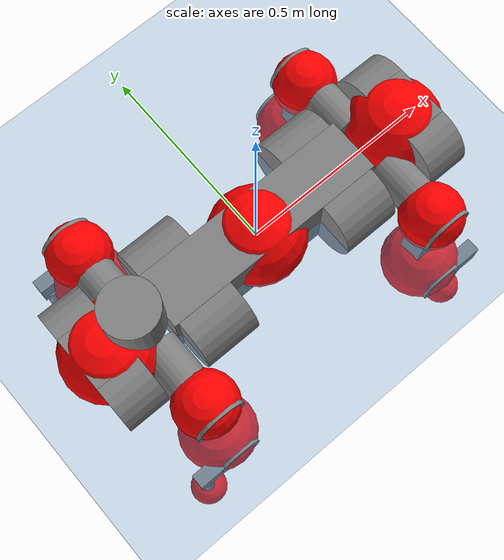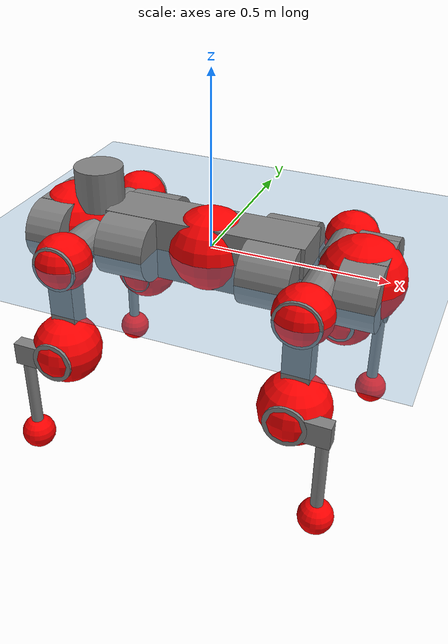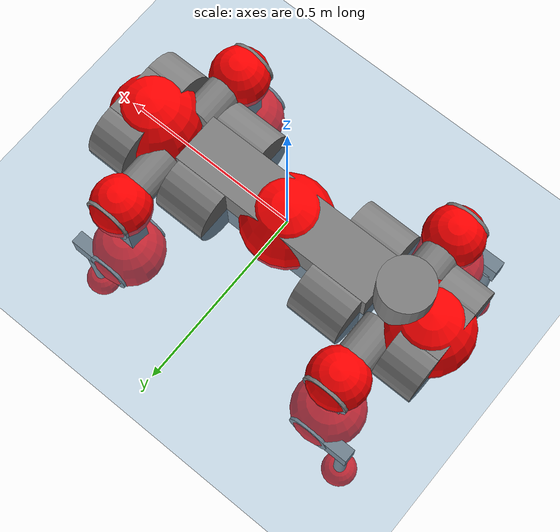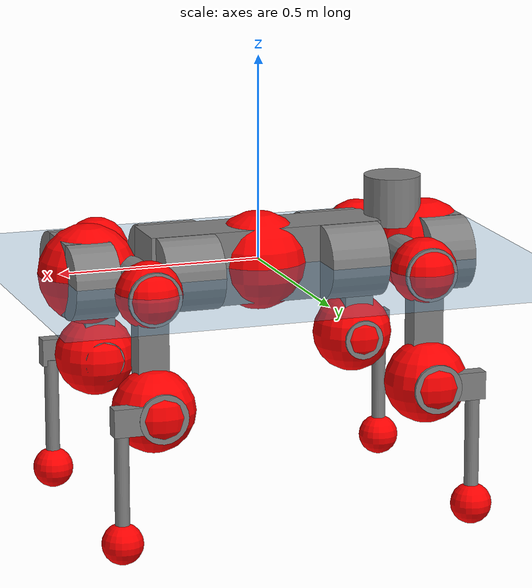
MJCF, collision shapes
<mujoco model="anymal_c">
  <compiler angle="radian" assetdir="assets" balanceinertia="true" inertiafromgeom="false"/>

  <option timestep="0.005" density="1.2" viscosity="2e-05"/>

  <size nkey="1"/>

  <visual>
    <quality shadowsize="8192"/>
    <map shadowclip="0.5"/>
  </visual>

  <default>
    <default class="/">
      <material specular="0" shininess="0.25"/>
      <geom contype="0" conaffinity="0" group="1" solref="-1000 -80"/>
      <site size="0.01 0.005 0.005" group="5"/>
      <general forcelimited="true" forcerange="-80 80" biastype="affine" gainprm="80" biasprm="0 -80 -2"/>
      <default class="anymal_c">
        <joint armature="0.01" damping="0.01" frictionloss="0.1"/>
        <default class="visual">
          <geom type="mesh" group="2"/>
          <default class="visual_zflip"/>
        </default>
        <default class="collision">
          <geom type="cylinder" group="3"/>
          <default class="foot">
            <geom size="0.03 0 0" type="sphere" condim="6" priority="1" friction="0.8 0.02 0.01" solimp="0.015 1 0.03"/>
          </default>
        </default>
      </default>
      <default class="reward_collision_sphere">
        <geom group="5" rgba="1 0 0 1"/>
      </default>
    </default>
  </default>

  <asset>
    <texture type="skybox" colorspace="auto" name="//unnamed_texture_0" builtin="gradient" rgb1="0.95 0.95 0.95" rgb2="0.95 0.95 0.95" width="100" height="600"/>
    <texture type="2d" colorspace="auto" name="texplane" builtin="checker" rgb1="0.345 0.575 0.748" rgb2="0.345 0.575 0.748" markrgb="1 1 1" width="512" height="512"/>
    <texture type="2d" colorspace="linear" name="base" file="base.png"/>
    <texture type="2d" colorspace="linear" name="top_shell" file="top_shell.png"/>
    <texture type="2d" colorspace="linear" name="bottom_shell" file="bottom_shell.png"/>
    <texture type="2d" colorspace="linear" name="remote" file="remote.png"/>
    <texture type="2d" colorspace="linear" name="hatch" file="hatch.png"/>
    <texture type="2d" colorspace="linear" name="handle" file="handle.png"/>
    <texture type="2d" colorspace="linear" name="face" file="face.png"/>
    <texture type="2d" colorspace="linear" name="battery" file="battery.png"/>
    <texture type="2d" colorspace="linear" name="lidar_cage" file="lidar_cage.png"/>
    <texture type="2d" colorspace="linear" name="depth_camera" file="depth_camera.png"/>
    <texture type="2d" colorspace="linear" name="wide_angle_camera" file="wide_angle_camera.png"/>
    <texture type="2d" colorspace="linear" name="lidar" file="lidar.png"/>
    <texture type="2d" colorspace="linear" name="drive" file="drive.png"/>
    <texture type="2d" colorspace="linear" name="hip_l" file="hip_l.png"/>
    <texture type="2d" colorspace="linear" name="shank_l" file="shank_l.png"/>
    <texture type="2d" colorspace="linear" name="foot" file="foot.png"/>
    <texture type="2d" colorspace="linear" name="thigh" file="thigh.png"/>
    <texture type="2d" colorspace="linear" name="shank_r" file="shank_r.png"/>
    <texture type="2d" colorspace="linear" name="hip_r" file="hip_r.png"/>
    <material name="MatPlane" class="/" texture="texplane" texuniform="true" texrepeat="2 2" specular="0.9" shininess="0.5"/>
    <material name="black_plastic" class="/" rgba="0.007 0.007 0.007 1"/>
    <material name="green" class="/" rgba="0.052 0.178 0.033 1"/>
    <material name="red" class="/" rgba="0.178 0.006 0.005 1"/>
    <material name="yellow" class="/" rgba="0.178 0.119 0.006 1"/>
    <material name="lwl" class="/" rgba="0.8 0.8 0.8 1"/>
    <material name="base" class="/" texture="base"/>
    <material name="top_shell" class="/" texture="top_shell"/>
    <material name="bottom_shell" class="/" texture="bottom_shell"/>
    <material name="hip_l" class="/" texture="hip_l"/>
    <material name="thigh" class="/" texture="thigh"/>
    <material name="shank_l" class="/" texture="shank_l"/>
    <material name="foot" class="/" texture="foot"/>
    <material name="hip_r" class="/" texture="hip_r"/>
    <material name="shank" class="/" texture="shank_r"/>
    <material name="hatch" class="/" texture="hatch"/>
    <material name="remote" class="/" texture="remote"/>
    <material name="handle" class="/" texture="handle"/>
    <material name="face" class="/" texture="face"/>
    <material name="depth_camera" class="/" texture="depth_camera"/>
    <material name="wide_angle_camera" class="/" texture="wide_angle_camera"/>
    <material name="battery" class="/" texture="battery"/>
    <material name="lidar_cage" class="/" texture="lidar_cage"/>
    <material name="lidar" class="/" texture="lidar"/>
    <material name="drive" class="/" texture="drive"/>
    <mesh name="base_0" class="/" file="base_0.obj"/>
    <mesh name="base_1" class="/" file="base_1.obj"/>
    <mesh name="base_2" class="/" file="base_2.obj"/>
    <mesh name="base_3" class="/" file="base_3.obj"/>
    <mesh name="base_4" class="/" file="base_4.obj"/>
    <mesh name="base_5" class="/" file="base_5.obj"/>
    <mesh name="top_shell" class="/" file="top_shell.obj"/>
    <mesh name="bottom_shell" class="/" file="bottom_shell.obj"/>
    <mesh name="remote" class="/" file="remote.obj"/>
    <mesh name="handle" class="/" file="handle.obj"/>
    <mesh name="face" class="/" file="face.obj"/>
    <mesh name="wide_angle_camera" class="/" file="wide_angle_camera.obj"/>
    <mesh name="depth_camera" class="/" file="depth_camera.obj"/>
    <mesh name="battery" class="/" file="battery.obj"/>
    <mesh name="lidar_cage" class="/" file="lidar_cage.obj"/>
    <mesh name="lidar" class="/" file="lidar.obj"/>
    <mesh name="drive" class="/" file="drive.obj"/>
    <mesh name="hip_l" class="/" file="hip_l.obj"/>
    <mesh name="thigh" class="/" file="thigh.obj"/>
    <mesh name="shank_l" class="/" file="shank_l.obj"/>
    <mesh name="foot" class="/" file="foot.obj"/>
    <mesh name="hip_r" class="/" file="hip_r.obj"/>
    <mesh name="hatch" class="/" file="hatch.obj"/>
    <mesh name="shank_r" class="/" file="shank_r.obj"/>
  </asset>

  <worldbody>
    <geom name="floor" class="/" size="100 100 0.125" type="plane" group="0" material="MatPlane"/>
    <light name="toplight_shadow" class="/" pos="0 0 5" dir="0.0990148 0.0990148 -0.990148" type="directional" ambient="0.04 0.04 0.04" diffuse="0.55 0.55 0.55" specular="0.12 0.12 0.12"/>
    <light name="toplight_fill" class="/" pos="0 0 5" dir="0.0990148 0.0990148 -0.990148" type="directional" castshadow="false" ambient="0.04 0.04 0.04" diffuse="0.3 0.3 0.3" specular="0.08 0.08 0.08"/>
    <body name="trunk" childclass="anymal_c" pos="0.000921466 -0.00174324 -0.00259351" quat="1 -0.000158739 0.000813105 -0.000213499">
      <inertial pos="-0.000146418 0.00174044 0.047455" quat="0.500387 0.496977 0.493626 0.508881" mass="20.0543" diaginertia="0.527064 1.05691 0.172853"/>
      <joint name="//unnamed_joint_0" type="free" armature="0" damping="0" frictionloss="0"/>
      <geom name="//unnamed_geom_1" class="visual" material="green" mesh="base_0"/>
      <geom name="//unnamed_geom_2" class="visual" material="yellow" mesh="base_1"/>
      <geom name="//unnamed_geom_3" class="visual" material="red" mesh="base_2"/>
      <geom name="//unnamed_geom_4" class="visual" material="black_plastic" mesh="base_3"/>
      <geom name="//unnamed_geom_5" class="visual" material="lwl" mesh="base_4"/>
      <geom name="//unnamed_geom_6" class="visual" material="base" mesh="base_5"/>
      <geom name="trunk_1" class="collision" size="0.290789 0.0701903 0.0902447" type="box"/>
      <geom name="trunk_2" class="collision" size="0.0902447 0.0726971" pos="0.207383 0.0773554 0" quat="0.707107 0 0.707107 0"/>
      <geom name="trunk_3" class="collision" size="0.0902447 0.0726971" pos="-0.207383 0.0773554 0" quat="0.707107 0 0.707107 0"/>
      <geom name="trunk_4" class="collision" size="0.0902447 0.0726971" pos="0.207383 -0.0773554 0" quat="0.707107 0 0.707107 0"/>
      <geom name="trunk_5" class="collision" size="0.0902447 0.0726971" pos="-0.207383 -0.0773554 0" quat="0.707107 0 0.707107 0"/>
      <geom name="//unnamed_geom_12" class="visual" material="top_shell" mesh="top_shell"/>
      <geom name="//unnamed_geom_13" class="visual" material="bottom_shell" mesh="bottom_shell"/>
      <geom name="//unnamed_geom_14" class="visual" material="remote" mesh="remote"/>
      <geom name="//unnamed_geom_15" class="visual" material="handle" mesh="handle"/>
      <geom name="//unnamed_geom_16" class="visual" pos="0.39522 0 0" quat="1 0 0 0" material="face" mesh="face"/>
      <geom name="trunk_6" class="collision" size="0.0551495 0.0701903 0.0902447" pos="0.447662 0 0" type="box"/>
      <geom name="//unnamed_geom_18" class="collision" size="0.0902447 0.0551495" pos="0.447662 0.0773554 0" quat="0.707107 0 0.707107 0"/>
      <geom name="//unnamed_geom_19" class="collision" size="0.0902447 0.0551495" pos="0.447662 -0.0773554 0" quat="0.707107 0 0.707107 0"/>
      <geom name="//unnamed_geom_20" class="visual" pos="0.440177 0 -0.0276985" quat="0.965926 0 0.258819 0" material="depth_camera" mesh="depth_camera"/>
      <geom name="//unnamed_geom_21" class="visual" pos="0.489138 0 0.0142154" material="wide_angle_camera" mesh="wide_angle_camera"/>
      <geom name="//unnamed_geom_22" class="visual_zflip" pos="-0.39522 0 0" quat="0 0 0 1" material="face" mesh="face"/>
      <geom name="trunk_7" class="collision" size="0.0551495 0.0701903 0.0902447" pos="-0.447662 0 0" quat="0 0 0 1" type="box"/>
      <geom name="//unnamed_geom_24" class="collision" size="0.0902447 0.0551495" pos="-0.447662 -0.0773554 0" quat="0 -0.707107 0 0.707107"/>
      <geom name="//unnamed_geom_25" class="collision" size="0.0902447 0.0551495" pos="-0.447662 0.0773554 0" quat="0 -0.707107 0 0.707107"/>
      <geom name="//unnamed_geom_26" class="visual" pos="-0.440177 0 -0.0276985" quat="0 -0.258819 0 0.965926" material="depth_camera" mesh="depth_camera"/>
      <geom name="//unnamed_geom_27" class="visual_zflip" pos="-0.489138 0 0.0142154" quat="0 0 0 1" material="wide_angle_camera" mesh="wide_angle_camera"/>
      <geom name="//unnamed_geom_28" class="visual" material="battery" mesh="battery"/>
      <geom name="//unnamed_geom_29" class="visual" pos="0 0.0864832 0.0276153" quat="0.683013 -0.183013 0.183013 0.683013" material="depth_camera" mesh="depth_camera"/>
      <geom name="//unnamed_geom_30" class="visual" pos="0 -0.0864832 0.0276153" quat="0.683013 0.183013 0.183013 -0.683013" material="depth_camera" mesh="depth_camera"/>
      <geom name="//unnamed_geom_31" class="visual" pos="-0.347069 0 0.0697951" quat="1 0 0 0" material="lidar_cage" mesh="lidar_cage"/>
      <geom name="trunk_8" class="collision" size="0.0701903 0.0601631" pos="-0.347069 0 0.126771"/>
      <geom name="//unnamed_geom_33" class="visual" pos="-0.347069 5.95561e-05 0.135032" quat="0.707107 0 0 -0.707107" material="lidar" mesh="lidar"/>
      <geom name="//unnamed_geom_34" class="visual" pos="0.28595 0.114873 2.68211e-09" quat="0.258819 0.965926 0 0" material="drive" mesh="drive"/>
      <geom name="//unnamed_geom_35" class="visual" pos="0.28595 -0.114873 -2.68211e-09" quat="0.258819 -0.965926 0 0" material="drive" mesh="drive"/>
      <geom name="//unnamed_geom_36" class="visual" pos="-0.28595 0.114873 -2.68211e-09" quat="0 0 0.965926 -0.258819" material="drive" mesh="drive"/>
      <geom name="//unnamed_geom_37" class="visual" pos="-0.28595 -0.114873 2.68211e-09" quat="0 0 -0.965926 -0.258819" material="drive" mesh="drive"/>
      <geom name="//unnamed_geom_38" class="visual" pos="0.110604 0 0.0693203" quat="1 0 0 0" material="hatch" mesh="hatch"/>
      <geom name="//unnamed_geom_39" class="reward_collision_sphere" size="0.120326"/>
      <geom name="//unnamed_geom_40" class="reward_collision_sphere" size="0.120326" pos="0.429069 0 0"/>
      <geom name="//unnamed_geom_41" class="reward_collision_sphere" size="0.120326" pos="-0.429069 0 0"/>
      <site name="imu" pos="0.235433 0.00696936 0.0416079" size="0.0100272"/>
      <camera name="track" pos="0 -2.21015 0" quat="0.707107 0.707107 0 0" mode="trackcom"/>
      <camera name="ego_camera" pos="0.429069 0 -0.0379837" quat="-0.5 -0.5 0.5 0.5"/>
      <body name="LF_HIP" pos="0.286955 0.1156 0.00089517" quat="0.259083 0.965855 0.000163296 2.61358e-05">
        <inertial pos="0.0540431 -0.0172401 -0.0080414" quat="-0.124091 0.718887 -0.129716 0.671549" mass="2.8362" diaginertia="0.0047428 0.00802169 0.00262136"/>
        <joint name="LF_HAA" pos="0 0 0" axis="0.999864 -0.015698 -0.00507496" range="-0.768809 0.454617" armature="0.0103783" damping="0.00590694" frictionloss="0.103992"/>
        <geom name="//unnamed_geom_42" class="visual" pos="0 0.000157776 -2.59146e-05" quat="0.258819 -0.965926 0 0" material="hip_l" mesh="hip_l"/>
        <geom name="//unnamed_geom_43" class="visual" pos="0.0571138 -0.0711462 -0.0399262" quat="0.183013 -0.683013 0.683013 0.183013" material="drive" mesh="drive"/>
        <geom name="//unnamed_geom_44" class="collision" size="0.0501359 0.0701903" pos="0.0571138 -0.0132165 -0.00655694" quat="-0.353553 -0.612372 0.612372 -0.353553"/>
        <body name="LF_THIGH" pos="0.0577703 -0.077858 -0.0366559" quat="0.183007 -0.683419 0.682858 0.182075">
          <inertial pos="0.0304608 -0.00203473 -0.234692" quat="0.993578 -0.00462939 -0.087057 0.0721282" mass="3.16317" diaginertia="0.023704 0.0478731 0.00320956"/>
          <joint name="LF_HFE" pos="0 0 0" axis="0.999969 0.00221492 0.00752701" stiffness="0.0135264" range="-3.17479 3.15743" armature="0.00915134" damping="0.0154337" frictionloss="0.0885386"/>
          <geom name="//unnamed_geom_45" class="visual" pos="-0.00301607 -4.75262e-06 0" quat="0.707107 0 0 -0.707107" material="thigh" mesh="thigh"/>
          <geom name="//unnamed_geom_46" class="collision" size="0.0651767 0.0401088" pos="0.0381394 0 0" quat="0.5 0.5 -0.5 -0.5"/>
          <geom name="//unnamed_geom_47" class="collision" size="0.037602 0.0300816 0.141698" pos="0.0286046 0 -0.134191" quat="0.707107 0 0 -0.707107" type="box"/>
          <geom name="//unnamed_geom_48" class="visual" pos="0.0956347 0 -0.270634" quat="1 0 0 0" material="drive" mesh="drive"/>
          <geom name="//unnamed_geom_49" class="collision" size="0.0501359 0.0701903" pos="0.0288906 0 -0.270634" quat="0.707107 0 0.707107 0"/>
          <geom name="//unnamed_geom_50" class="reward_collision_sphere" size="0.0802175" pos="0.0238372 0 0"/>
          <body name="LF_SHANK" pos="0.0969276 0.000918684 -0.272403" quat="1 1.98568e-05 0.000101308 -5.37082e-05">
            <inertial pos="0.00551244 -0.0696432 -0.077248" quat="0.992604 -0.115195 0.00363372 -0.0381446" mass="0.597928" diaginertia="0.00785296 0.014688 0.000839103"/>
            <joint name="LF_KFE" pos="0 0 0" axis="0.999991 0.00326322 -0.00275068" stiffness="0.0056505" range="-3.18204 3.1553" armature="0.0087422" damping="0.00678502" frictionloss="0.113518"/>
            <geom name="//unnamed_geom_51" class="visual" pos="-0.000983474 -0.00524393 0" quat="0.707107 0 0 -0.707107" material="shank_l" mesh="shank_l"/>
            <geom name="LF_kfe_act" class="collision" size="0.0601631 0.0200544" pos="0.0190697 0 0" quat="0.5 0.5 -0.5 -0.5"/>
            <geom name="//unnamed_geom_53" class="collision" size="0.0576553 0.0338418 0.0190517" pos="0.0190697 -0.0635408 0" quat="0.5 0.5 -0.5 -0.5" type="box"/>
            <geom name="//unnamed_geom_54" class="visual" pos="0.0124432 -0.0988814 -0.320934" quat="0.382683 0 0 -0.92388" material="foot" mesh="foot"/>
            <geom name="LF_calf" class="collision" size="0.0175476 0.141636" pos="0.012443 -0.0971915 -0.160467" quat="0.707107 0 0 -0.707107"/>
            <geom name="LF_foot" class="foot" size="0.0284133" pos="0.012443 -0.0971915 -0.299568" quat="0.707107 0 0 -0.707107"/>
            <geom name="//unnamed_geom_57" class="reward_collision_sphere" size="0.100272" pos="-0.0476743 0 0"/>
            <geom name="//unnamed_geom_58" class="reward_collision_sphere" size="0.0501359" pos="0.012443 -0.0971915 -0.299568"/>
            <site name="LF_foot" class="foot" pos="0.012443 -0.0971915 -0.299568" quat="0.707107 0 0 -0.707107" size="0.0100272"/>
          </body>
        </body>
      </body>
      <body name="RF_HIP" pos="0.287979 -0.117682 0.00523803" quat="0.259111 -0.965847 0.00102884 0.000394712">
        <inertial pos="0.0532125 0.0201688 -0.0104597" quat="0.132793 0.679416 0.127082 0.710359" mass="2.67531" diaginertia="0.00447957 0.00810856 0.00259537"/>
        <joint name="RF_HAA" pos="0 0 0" axis="0.999915 0.00374987 0.0124729" stiffness="0.0122359" range="-0.491632 0.722213" armature="0.00872068" damping="0.00806974" frictionloss="0.112723"/>
        <geom name="//unnamed_geom_59" class="visual" pos="0 -0.000157775 -2.59146e-05" quat="0.258819 0.965926 0 0" material="hip_r" mesh="hip_r"/>
        <geom name="//unnamed_geom_60" class="visual" pos="0.0571138 0.0711462 -0.0399262" quat="0.183013 0.683013 0.683013 -0.183013" material="drive" mesh="drive"/>
        <geom name="//unnamed_geom_61" class="collision" size="0.0501359 0.0701903" pos="0.0571138 0.0132165 -0.00655694" quat="-0.353553 0.612372 0.612372 0.353553"/>
        <body name="RF_THIGH" pos="0.0546377 0.0760579 -0.0385567" quat="0.183471 0.68279 0.683078 -0.183143">
          <inertial pos="0.03199 -0.00194845 -0.234149" quat="0.991272 -0.0115482 -0.0905241 0.0951396" mass="3.1765" diaginertia="0.0232019 0.0489201 0.00320874"/>
          <joint name="RF_HFE" pos="0 0 0" axis="1 0.000238935 -0.000423195" range="-3.12454 3.19325" armature="0.0102198" damping="0.00762685" frictionloss="0.090056"/>
          <geom name="//unnamed_geom_62" class="visual" pos="-0.00301607 -4.75262e-06 0" quat="0.707107 0 0 -0.707107" material="thigh" mesh="thigh"/>
          <geom name="//unnamed_geom_63" class="collision" size="0.0651767 0.0401088" pos="0.0381394 0 0" quat="0.5 0.5 0.5 0.5"/>
          <geom name="//unnamed_geom_64" class="collision" size="0.037602 0.0300816 0.141698" pos="0.0286046 0 -0.134191" quat="0.707107 0 0 0.707107" type="box"/>
          <geom name="//unnamed_geom_65" class="visual" pos="0.0956347 0 -0.270634" quat="1 0 0 0" material="drive" mesh="drive"/>
          <geom name="//unnamed_geom_66" class="collision" size="0.0501359 0.0701903" pos="0.0288906 0 -0.270634" quat="0.707107 0 0.707107 0"/>
          <geom name="//unnamed_geom_67" class="reward_collision_sphere" size="0.0802175" pos="0.0238372 0 0"/>
          <body name="RF_SHANK" pos="0.0919974 0.00147117 -0.272057" quat="1 -0.000387555 0.000676476 -0.000584661">
            <inertial pos="0.00326151 0.069496 -0.076988" quat="0.991273 0.12941 -0.0010798 0.0250886" mass="0.579931" diaginertia="0.00754567 0.0151238 0.000820556"/>
            <joint name="RF_KFE" pos="0 0 0" axis="1 0.000487775 -0.000744157" range="-3.07708 3.18406" armature="0.0094698" damping="0.0141355" frictionloss="0.0866051"/>
            <geom name="//unnamed_geom_68" class="visual" pos="-0.000983468 0.00524392 0" quat="0.707107 0 0 0.707107" material="shank" mesh="shank_r"/>
            <geom name="RF_kfe_act" class="collision" size="0.0601631 0.0200544" pos="0.0190697 0 0" quat="0.5 0.5 0.5 0.5"/>
            <geom name="//unnamed_geom_70" class="collision" size="0.0576553 0.0338418 0.0190517" pos="0.0190697 0.0635408 0" quat="0.5 0.5 0.5 0.5" type="box"/>
            <geom name="//unnamed_geom_71" class="visual" pos="0.0124428 0.0988814 -0.320934" quat="0.382683 0 0 0.92388" material="foot" mesh="foot"/>
            <geom name="RF_calf" class="collision" size="0.0175476 0.141636" pos="0.012443 0.0971915 -0.160467" quat="0.707107 0 0 0.707107"/>
            <geom name="RF_foot" class="foot" size="0.0327989" pos="0.012443 0.0971915 -0.299568" quat="0.707107 0 0 0.707107"/>
            <geom name="//unnamed_geom_74" class="reward_collision_sphere" size="0.100272" pos="-0.0476743 0 0"/>
            <geom name="//unnamed_geom_75" class="reward_collision_sphere" size="0.0501359" pos="0.012443 0.0971915 -0.299568"/>
            <site name="RF_foot" class="foot" pos="0.012443 0.0971915 -0.299568" quat="0.707107 0 0 0.707107" size="0.0100272"/>
          </body>
        </body>
      </body>
      <body name="LH_HIP" pos="-0.28522 0.117876 0.00219124" quat="-2.20128e-05 -7.73423e-05 0.965912 -0.25887">
        <inertial pos="0.0559649 0.0144648 -0.0058839" quat="0.145767 0.677491 0.127069 0.709656" mass="2.78328" diaginertia="0.00436008 0.00757925 0.00252424"/>
        <joint name="LH_HAA" pos="0 0 0" axis="0.99993 -0.0107033 -0.00512371" range="-0.487085 0.669563" armature="0.00896678" damping="0.0119211" frictionloss="0.105154"/>
        <geom name="//unnamed_geom_76" class="visual" pos="0 -0.000157775 -2.59146e-05" quat="-0.258819 -0.965926 0 0" material="hip_r" mesh="hip_r"/>
        <geom name="//unnamed_geom_77" class="visual" pos="0.0571138 0.0711462 -0.0399262" quat="0.183013 0.683013 0.683013 -0.183013" material="drive" mesh="drive"/>
        <geom name="//unnamed_geom_78" class="collision" size="0.0501359 0.0701903" pos="0.0571138 0.0132165 -0.00655694" quat="-0.353553 0.612372 0.612372 0.353553"/>
        <body name="LH_THIGH" pos="0.0564256 0.0771008 -0.0399355" quat="0.182731 0.683003 0.682994 -0.1834">
          <inertial pos="0.0286684 -0.00264982 -0.2304" quat="0.993156 -0.00561802 -0.0812614 0.0837082" mass="3.1432" diaginertia="0.023015 0.0504326 0.0032039"/>
          <joint name="LH_HFE" pos="0 0 0" axis="0.999932 -0.00477777 0.0106652" range="-3.16148 3.15418" armature="0.0109296" damping="0.0134721" frictionloss="0.0885955"/>
          <geom name="//unnamed_geom_79" class="visual" pos="-0.00301607 -4.75262e-06 0" quat="0.707107 0 0 -0.707107" material="thigh" mesh="thigh"/>
          <geom name="//unnamed_geom_80" class="collision" size="0.0651767 0.0401088" pos="0.0381394 0 0" quat="0.5 0.5 -0.5 -0.5"/>
          <geom name="//unnamed_geom_81" class="collision" size="0.037602 0.0300816 0.141698" pos="0.0286046 0 -0.134191" quat="0.707107 0 0 -0.707107" type="box"/>
          <geom name="//unnamed_geom_82" class="visual" pos="0.0956347 0 -0.270634" quat="1 0 0 0" material="drive" mesh="drive"/>
          <geom name="//unnamed_geom_83" class="collision" size="0.0501359 0.0701903" pos="0.0288906 0 -0.270634" quat="0.707107 0 0.707107 0"/>
          <geom name="//unnamed_geom_84" class="reward_collision_sphere" size="0.0802175" pos="0.0238372 0 0"/>
          <body name="LH_SHANK" pos="0.0934149 -0.0013983 -0.268456" quat="0.999999 -0.000360188 -0.000838504 0.000763271">
            <inertial pos="0.00468798 0.0680694 -0.0767346" quat="0.99298 0.11523 -0.00155336 0.0266437" mass="0.583852" diaginertia="0.00800309 0.01524 0.000869208"/>
            <joint name="LH_KFE" pos="0 0 0" axis="0.999991 -0.00414276 0.000102763" range="-3.17527 3.13485" armature="0.0089907" damping="0.0138601" frictionloss="0.0906991"/>
            <geom name="//unnamed_geom_85" class="visual" pos="-0.000983468 0.00524392 0" quat="-0.707107 0 0 -0.707107" material="shank" mesh="shank_r"/>
            <geom name="LH_kfe_act" class="collision" size="0.0601631 0.0200544" pos="0.0190697 0 0" quat="0.5 0.5 -0.5 -0.5"/>
            <geom name="//unnamed_geom_87" class="collision" size="0.0576553 0.0338418 0.0190517" pos="0.0190697 0.0635408 0" quat="0.5 0.5 -0.5 -0.5" type="box"/>
            <geom name="//unnamed_geom_88" class="visual" pos="0.0124428 0.0988814 -0.320934" quat="-0.382683 0 0 -0.92388" material="foot" mesh="foot"/>
            <geom name="LH_calf" class="collision" size="0.0175476 0.141636" pos="0.012443 0.0971915 -0.160467" quat="0.707107 0 0 -0.707107"/>
            <geom name="LH_foot" class="foot" size="0.0321505" pos="0.012443 0.0971915 -0.299568" quat="0.707107 0 0 -0.707107"/>
            <geom name="//unnamed_geom_91" class="reward_collision_sphere" size="0.100272" pos="-0.0476743 0 0"/>
            <geom name="//unnamed_geom_92" class="reward_collision_sphere" size="0.0501359" pos="0.012443 0.0971915 -0.299568"/>
            <site name="LH_foot" class="foot" pos="0.012443 0.0971915 -0.299568" quat="0.707107 0 0 -0.707107" size="0.0100272"/>
          </body>
        </body>
      </body>
      <body name="RH_HIP" pos="-0.284095 -0.113813 0.000201362" quat="0.000805963 0.000874053 -0.965883 -0.258975">
        <inertial pos="0.0535817 -0.0195517 -0.00932185" quat="-0.131561 0.710509 -0.135538 0.677863" mass="2.69879" diaginertia="0.00445761 0.00810058 0.0023782"/>
        <joint name="RH_HAA" pos="0 0 0" axis="0.999998 0.000741027 -0.00160462" range="-0.763475 0.524225" armature="0.00961213" damping="0.0040352" frictionloss="0.11072"/>
        <geom name="//unnamed_geom_93" class="visual" pos="0 0.000157776 -2.59146e-05" quat="-0.258819 0.965926 0 0" material="hip_l" mesh="hip_l"/>
        <geom name="//unnamed_geom_94" class="visual" pos="0.0571138 -0.0711462 -0.0399262" quat="-0.183013 0.683013 -0.683013 -0.183013" material="drive" mesh="drive"/>
        <geom name="//unnamed_geom_95" class="collision" size="0.0501359 0.0701903" pos="0.0571138 -0.0132165 -0.00655694" quat="0.353553 0.612372 -0.612372 0.353553"/>
        <body name="RH_THIGH" pos="0.0553421 -0.0793294 -0.0412661" quat="-0.183197 0.68216 -0.68392 -0.18262">
          <inertial pos="0.0289442 -0.00112672 -0.232842" quat="0.99318 -0.00840218 -0.0766169 0.0874786" mass="3.27947" diaginertia="0.0243167 0.0489986 0.00324131"/>
          <joint name="RH_HFE" pos="0 0 0" axis="0.999974 -0.00581265 0.00425498" range="-3.14764 3.0956" armature="0.0109201" damping="0.0105836" frictionloss="0.10126"/>
          <geom name="//unnamed_geom_96" class="visual" pos="-0.00301607 -4.75262e-06 0" quat="0.707107 0 0 -0.707107" material="thigh" mesh="thigh"/>
          <geom name="//unnamed_geom_97" class="collision" size="0.0651767 0.0401088" pos="0.0381394 0 0" quat="0.5 0.5 0.5 0.5"/>
          <geom name="//unnamed_geom_98" class="collision" size="0.037602 0.0300816 0.141698" pos="0.0286046 0 -0.134191" quat="0.707107 0 0 0.707107" type="box"/>
          <geom name="//unnamed_geom_99" class="visual" pos="0.0956347 0 -0.270634" quat="1 0 0 0" material="drive" mesh="drive"/>
          <geom name="//unnamed_geom_100" class="collision" size="0.0501359 0.0701903" pos="0.0288906 0 -0.270634" quat="0.707107 0 0.707107 0"/>
          <geom name="//unnamed_geom_101" class="reward_collision_sphere" size="0.0802175" pos="0.0238372 0 0"/>
          <body name="RH_SHANK" pos="0.0977612 0.000191776 -0.268997" quat="1 0.000100781 -2.50718e-05 2.64365e-05">
            <inertial pos="0.00296796 -0.0660005 -0.0762795" quat="0.992725 -0.11763 0.0005288 -0.025702" mass="0.609661" diaginertia="0.00830674 0.0158076 0.000866149"/>
            <joint name="RH_KFE" pos="0 0 0" axis="0.999993 -0.00225086 -0.00284967" stiffness="0.00681093" range="-3.14381 3.18704" armature="0.00982718" damping="0.000762077" frictionloss="0.112198"/>
            <geom name="//unnamed_geom_102" class="visual" pos="-0.000983474 -0.00524393 0" quat="0.707107 0 0 -0.707107" material="shank_l" mesh="shank_l"/>
            <geom name="RH_kfe_act" class="collision" size="0.0601631 0.0200544" pos="0.0190697 0 0" quat="0.5 0.5 0.5 0.5"/>
            <geom name="//unnamed_geom_104" class="collision" size="0.0576553 0.0338418 0.0190517" pos="0.0190697 -0.0635408 0" quat="0.5 0.5 0.5 0.5" type="box"/>
            <geom name="//unnamed_geom_105" class="visual" pos="0.0124432 -0.0988814 -0.320934" quat="0.382683 0 0 -0.92388" material="foot" mesh="foot"/>
            <geom name="RH_calf" class="collision" size="0.0175476 0.141636" pos="0.012443 -0.0971915 -0.160467" quat="0.707107 0 0 0.707107"/>
            <geom name="RH_foot" class="foot" size="0.0270695" pos="0.012443 -0.0971915 -0.299568" quat="0.707107 0 0 0.707107"/>
            <geom name="//unnamed_geom_108" class="reward_collision_sphere" size="0.100272" pos="-0.0476743 0 0"/>
            <geom name="//unnamed_geom_109" class="reward_collision_sphere" size="0.0501359" pos="0.012443 -0.0971915 -0.299568"/>
            <site name="RH_foot" class="foot" pos="0.012443 -0.0971915 -0.299568" quat="0.707107 0 0 0.707107" size="0.0100272"/>
          </body>
        </body>
      </body>
    </body>
  </worldbody>

  <contact>
    <pair class="/" geom1="floor" geom2="LF_foot" name="//unnamed_contact_0"/>
    <pair class="/" geom1="floor" geom2="RF_foot" name="//unnamed_contact_1"/>
    <pair class="/" geom1="floor" geom2="LH_foot" name="//unnamed_contact_2"/>
    <pair class="/" geom1="floor" geom2="RH_foot" name="//unnamed_contact_3"/>
  </contact>

  <actuator>
    <general name="LF_HAA" class="/" joint="LF_HAA" forcerange="-88.9157 88.9157" gainprm="81.8974" biasprm="0 -81.8974 -2.26968"/>
    <general name="LF_HFE" class="/" joint="LF_HFE" forcerange="-80.8881 80.8881" gainprm="81.8974" biasprm="0 -81.8974 -2.26968"/>
    <general name="LF_KFE" class="/" joint="LF_KFE" forcerange="-80.2445 80.2445" gainprm="81.8974" biasprm="0 -81.8974 -2.26968"/>
    <general name="RF_HAA" class="/" joint="RF_HAA" forcerange="-72.737 72.737" gainprm="81.8974" biasprm="0 -81.8974 -2.26968"/>
    <general name="RF_HFE" class="/" joint="RF_HFE" forcerange="-82.2969 82.2969" gainprm="81.8974" biasprm="0 -81.8974 -2.26968"/>
    <general name="RF_KFE" class="/" joint="RF_KFE" forcerange="-76.5986 76.5986" gainprm="81.8974" biasprm="0 -81.8974 -2.26968"/>
    <general name="LH_HAA" class="/" joint="LH_HAA" forcerange="-73.6071 73.6071" gainprm="81.8974" biasprm="0 -81.8974 -2.26968"/>
    <general name="LH_HFE" class="/" joint="LH_HFE" forcerange="-80.5734 80.5734" gainprm="81.8974" biasprm="0 -81.8974 -2.26968"/>
    <general name="LH_KFE" class="/" joint="LH_KFE" forcerange="-89.6311 89.6311" gainprm="81.8974" biasprm="0 -81.8974 -2.26968"/>
    <general name="RH_HAA" class="/" joint="RH_HAA" forcerange="-72.8664 72.8664" gainprm="81.8974" biasprm="0 -81.8974 -2.26968"/>
    <general name="RH_HFE" class="/" joint="RH_HFE" forcerange="-89.1591 89.1591" gainprm="81.8974" biasprm="0 -81.8974 -2.26968"/>
    <general name="RH_KFE" class="/" joint="RH_KFE" forcerange="-79.0227 79.0227" gainprm="81.8974" biasprm="0 -81.8974 -2.26968"/>
  </actuator>

  <sensor>
    <gyro site="imu" name="imu_angular_velocity"/>
    <velocimeter site="imu" name="imu_linear_velocity"/>
    <framelinvel objtype="site" objname="LF_foot" name="LF_foot_global_linear_velocity"/>
    <framelinvel objtype="site" objname="RF_foot" name="RF_foot_global_linear_velocity"/>
    <framelinvel objtype="site" objname="LH_foot" name="LH_foot_global_linear_velocity"/>
    <framelinvel objtype="site" objname="RH_foot" name="RH_foot_global_linear_velocity"/>
  </sensor>

  <keyframe>
    <key name="home" qpos="0 0 0.55 1 0 0 0 0 0.4 -0.8 0 -0.4 0.8 0 -0.4 0.8 0 0.4 -0.8"/>
  </keyframe>
</mujoco>
